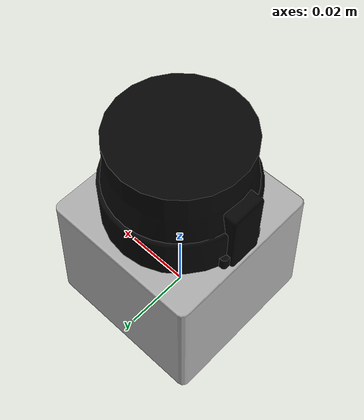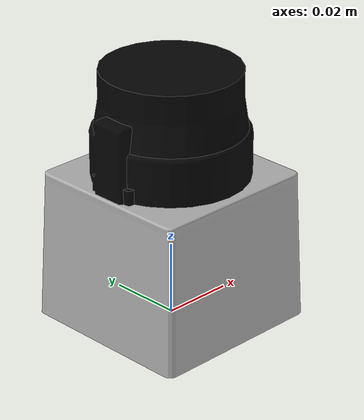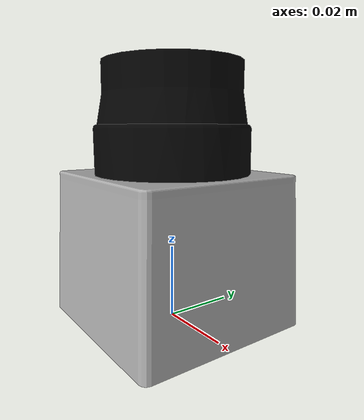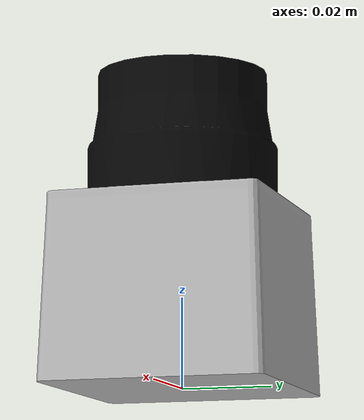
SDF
<?xml version="1.0" ?>
<sdf version="1.5">
  <model name="lidar_v">
    <pose>0 0 0.035 0 0 0</pose>
    <link name="link_v">
      <inertial>
        <mass>0.016</mass>
        <inertia>
            <ixx>0.0001</ixx>
            <ixy>0</ixy>
            <ixz>0</ixz>
            <iyy>0.0001</iyy>
            <iyz>0</iyz>
            <izz>0.0001</izz>
            <!-- low intertia necessary to avoid not disturb the drone -->
        </inertia>
      </inertial>
      <visual name="visual">
        <geometry>
          <mesh>
            <uri>model://hokuyo/meshes/hokuyo.dae</uri>
          </mesh>
        </geometry>
      </visual>
      <collision name="collision-base">
        <pose>0 0 -0.0145 0 0 0</pose>
        <geometry>
          <box>
            <size>0.05 0.05 0.041</size>
          </box>
        </geometry>
      </collision>
      <collision name="collision-top">
        <pose>0 0 0.0205 0 0 0</pose>
        <geometry>
          <cylinder>
            <radius>0.021</radius>
            <length>0.029</length>
          </cylinder>
        </geometry>
      </collision>
      <sensor name="laser" type="ray">
        <pose>0.01 0 0.0175 0 -0 0</pose>
        <ray>
          <scan>
            <horizontal>
              <samples>1024</samples>
              <resolution>1</resolution>
              <min_angle>-1.5707</min_angle>
              <max_angle>1.5707</max_angle>
            </horizontal>
          </scan>
          <range>
            <min>0.08</min>
            <max>15</max>
            <resolution>0.01</resolution>
          </range>
        </ray>
        <plugin name="hokuyo_node" filename="libgazebo_ros_laser.so">
          <robotNamespace></robotNamespace>
          <topicName>/spur/laser_v/scan</topicName>
          <frameName>/hokuyo_v_sensor_link</frameName>
        </plugin>
        <plugin name="laser" filename="libRayPlugin.so" />
        <always_on>1</always_on>
        <update_rate>30</update_rate>
        <visualize>true</visualize>
      </sensor>
    </link>
  </model>
</sdf>
